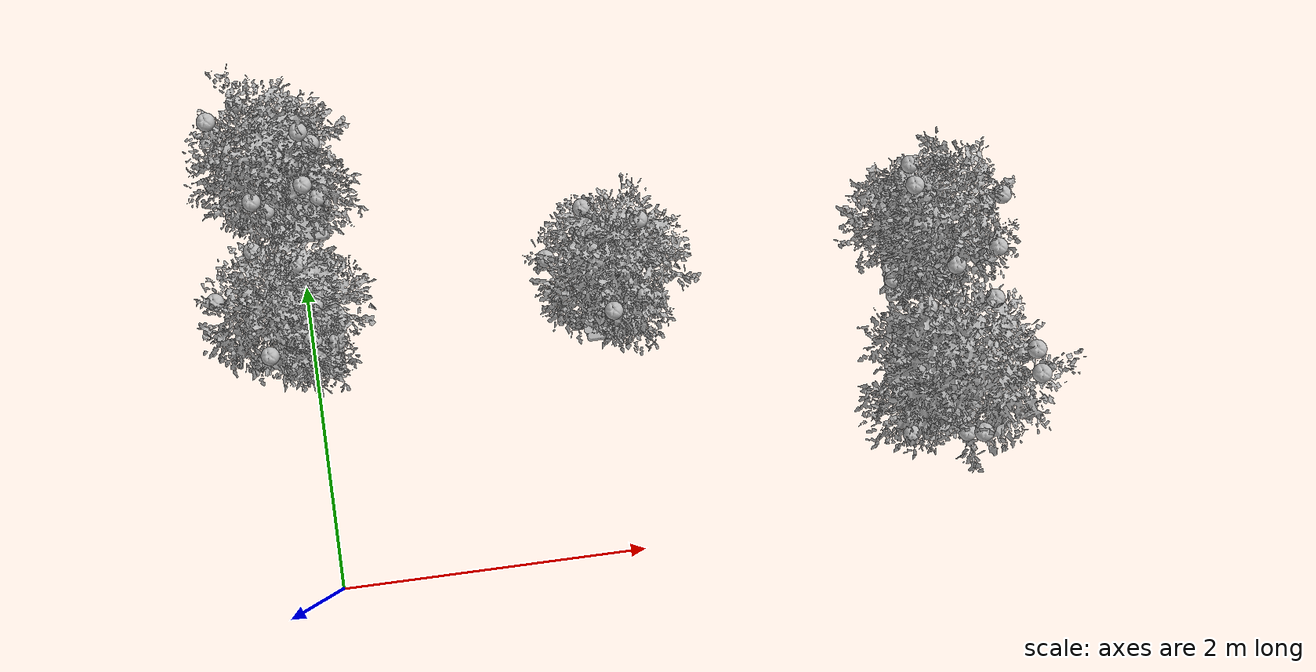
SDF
<sdf version="1.6">
 <world name="default">
  <model name="plant02">
   <static>1</static>
   <link name="plant_4::plant">
    <visual name="visual"><geometry><mesh><uri>model://plant/meshes/plant.obj</uri></mesh></geometry></visual>
    <collision name="collision"><geometry><box><size>0.1 0.1 0.1</size></box></geometry></collision>
    <pose>0 0 -0.45 0 0 -0.277507</pose>
   </link>
   <link name="trough::trough_link">
    <visual name="visual"><geometry><mesh><uri>model://trough/meshes/truf.obj</uri></mesh></geometry></visual>
    <collision name="collision">
     <geometry><mesh><uri>model://trough/meshes/truf.obj</uri></mesh></geometry>
    </collision>
    <pose>0 0 0 1.57 -0 0</pose>
   </link>
   <link name="tomato_40::tomato_link">
    <visual name="visual"><geometry><mesh><uri>model://tomato/meshes/tomato.obj</uri></mesh></geometry></visual>
    <collision name="collision">
     <geometry><mesh><uri>model://tomato/meshes/tomato.obj</uri></mesh></geometry>
    </collision>
    <pose>-0.297 0.244 0.669 0 -0 0</pose>
   </link>
   <link name="tomato_41::tomato_link">
    <visual name="visual"><geometry><mesh><uri>model://tomato/meshes/tomato.obj</uri></mesh></geometry></visual>
    <collision name="collision">
     <geometry><mesh><uri>model://tomato/meshes/tomato.obj</uri></mesh></geometry>
    </collision>
    <pose>0.073 0.375 1.175 0 -0 0</pose>
   </link>
   <link name="tomato_42::tomato_link">
    <visual name="visual"><geometry><mesh><uri>model://tomato/meshes/tomato.obj</uri></mesh></geometry></visual>
    <collision name="collision">
     <geometry><mesh><uri>model://tomato/meshes/tomato.obj</uri></mesh></geometry>
    </collision>
    <pose>0.196 -0.202 1.528 0 -0 0</pose>
   </link>
   <link name="tomato_43::tomato_link">
    <visual name="visual"><geometry><mesh><uri>model://tomato/meshes/tomato.obj</uri></mesh></geometry></visual>
    <collision name="collision">
     <geometry><mesh><uri>model://tomato/meshes/tomato.obj</uri></mesh></geometry>
    </collision>
    <pose>0.054 -0.237 0.732 0 -0 0</pose>
   </link>
   <link name="tomato_44::tomato_link">
    <visual name="visual"><geometry><mesh><uri>model://tomato/meshes/tomato.obj</uri></mesh></geometry></visual>
    <collision name="collision">
     <geometry><mesh><uri>model://tomato/meshes/tomato.obj</uri></mesh></geometry>
    </collision>
    <pose>-0.236 -0.275 0.851 0 -0 0</pose>
   </link>
   <link name="tomato_45::tomato_link">
    <visual name="visual"><geometry><mesh><uri>model://tomato/meshes/tomato.obj</uri></mesh></geometry></visual>
    <collision name="collision">
     <geometry><mesh><uri>model://tomato/meshes/tomato.obj</uri></mesh></geometry>
    </collision>
    <pose>-0.318 0.01 1.158 0 -0 0</pose>
   </link>
   <link name="tomato_46::tomato_link">
    <visual name="visual"><geometry><mesh><uri>model://tomato/meshes/tomato.obj</uri></mesh></geometry></visual>
    <collision name="collision">
     <geometry><mesh><uri>model://tomato/meshes/tomato.obj</uri></mesh></geometry>
    </collision>
    <pose>0.351 0.12 1.158 0 -0 0</pose>
   </link>
   <link name="tomato_47::tomato_link">
    <visual name="visual"><geometry><mesh><uri>model://tomato/meshes/tomato.obj</uri></mesh></geometry></visual>
    <collision name="collision">
     <geometry><mesh><uri>model://tomato/meshes/tomato.obj</uri></mesh></geometry>
    </collision>
    <pose>-0.039 -0.257 1.451 0 -0 0</pose>
   </link>
   <link name="tomato_48::tomato_link">
    <visual name="visual"><geometry><mesh><uri>model://tomato/meshes/tomato.obj</uri></mesh></geometry></visual>
    <collision name="collision">
     <geometry><mesh><uri>model://tomato/meshes/tomato.obj</uri></mesh></geometry>
    </collision>
    <pose>-0.236 -0.189 1.233 0 -0 0</pose>
   </link>
   <link name="tomato_49::tomato_link">
    <visual name="visual"><geometry><mesh><uri>model://tomato/meshes/tomato.obj</uri></mesh></geometry></visual>
    <collision name="collision">
     <geometry><mesh><uri>model://tomato/meshes/tomato.obj</uri></mesh></geometry>
    </collision>
    <pose>-0.318 0.01 1.599 0 -0 0</pose>
   </link>
   <pose>0 1.8 0 0 -0 1.57</pose>
  </model>
  <model name="plant03">
   <static>1</static>
   <link name="plant_2::plant">
    <visual name="visual"><geometry><mesh><uri>model://plant/meshes/plant.obj</uri></mesh></geometry></visual>
    <collision name="collision"><geometry><box><size>0.1 0.1 0.1</size></box></geometry></collision>
    <pose>0 0 -0.45 0 -0 0.338594</pose>
   </link>
   <link name="trough::trough_link">
    <visual name="visual"><geometry><mesh><uri>model://trough/meshes/truf.obj</uri></mesh></geometry></visual>
    <collision name="collision">
     <geometry><mesh><uri>model://trough/meshes/truf.obj</uri></mesh></geometry>
    </collision>
    <pose>0 0 0 1.57 -0 0</pose>
   </link>
   <link name="tomato_20::tomato_link">
    <visual name="visual"><geometry><mesh><uri>model://tomato/meshes/tomato.obj</uri></mesh></geometry></visual>
    <collision name="collision">
     <geometry><mesh><uri>model://tomato/meshes/tomato.obj</uri></mesh></geometry>
    </collision>
    <pose>-0.297 0.244 0.695 0 -0 0</pose>
   </link>
   <link name="tomato_21::tomato_link">
    <visual name="visual"><geometry><mesh><uri>model://tomato/meshes/tomato.obj</uri></mesh></geometry></visual>
    <collision name="collision">
     <geometry><mesh><uri>model://tomato/meshes/tomato.obj</uri></mesh></geometry>
    </collision>
    <pose>0.164 0.199 1.684 0 -0 0</pose>
   </link>
   <link name="tomato_22::tomato_link">
    <visual name="visual"><geometry><mesh><uri>model://tomato/meshes/tomato.obj</uri></mesh></geometry></visual>
    <collision name="collision">
     <geometry><mesh><uri>model://tomato/meshes/tomato.obj</uri></mesh></geometry>
    </collision>
    <pose>0.394 -0.151 0.705 0 -0 0</pose>
   </link>
   <link name="tomato_23::tomato_link">
    <visual name="visual"><geometry><mesh><uri>model://tomato/meshes/tomato.obj</uri></mesh></geometry></visual>
    <collision name="collision">
     <geometry><mesh><uri>model://tomato/meshes/tomato.obj</uri></mesh></geometry>
    </collision>
    <pose>0.054 -0.308 1.158 0 -0 0</pose>
   </link>
   <link name="tomato_24::tomato_link">
    <visual name="visual"><geometry><mesh><uri>model://tomato/meshes/tomato.obj</uri></mesh></geometry></visual>
    <collision name="collision">
     <geometry><mesh><uri>model://tomato/meshes/tomato.obj</uri></mesh></geometry>
    </collision>
    <pose>-0.236 -0.275 0.883 0 -0 0</pose>
   </link>
   <link name="tomato_25::tomato_link">
    <visual name="visual"><geometry><mesh><uri>model://tomato/meshes/tomato.obj</uri></mesh></geometry></visual>
    <collision name="collision">
     <geometry><mesh><uri>model://tomato/meshes/tomato.obj</uri></mesh></geometry>
    </collision>
    <pose>-0.318 0.01 1.158 0 -0 0</pose>
   </link>
   <link name="tomato_26::tomato_link">
    <visual name="visual"><geometry><mesh><uri>model://tomato/meshes/tomato.obj</uri></mesh></geometry></visual>
    <collision name="collision">
     <geometry><mesh><uri>model://tomato/meshes/tomato.obj</uri></mesh></geometry>
    </collision>
    <pose>0.351 0.12 1.158 0 -0 0</pose>
   </link>
   <link name="tomato_27::tomato_link">
    <visual name="visual"><geometry><mesh><uri>model://tomato/meshes/tomato.obj</uri></mesh></geometry></visual>
    <collision name="collision">
     <geometry><mesh><uri>model://tomato/meshes/tomato.obj</uri></mesh></geometry>
    </collision>
    <pose>0.054 -0.308 1.599 0 -0 0</pose>
   </link>
   <link name="tomato_28::tomato_link">
    <visual name="visual"><geometry><mesh><uri>model://tomato/meshes/tomato.obj</uri></mesh></geometry></visual>
    <collision name="collision">
     <geometry><mesh><uri>model://tomato/meshes/tomato.obj</uri></mesh></geometry>
    </collision>
    <pose>-0.236 -0.275 1.464 0 -0 0</pose>
   </link>
   <link name="tomato_29::tomato_link">
    <visual name="visual"><geometry><mesh><uri>model://tomato/meshes/tomato.obj</uri></mesh></geometry></visual>
    <collision name="collision">
     <geometry><mesh><uri>model://tomato/meshes/tomato.obj</uri></mesh></geometry>
    </collision>
    <pose>-0.318 0.01 1.599 0 -0 0</pose>
   </link>
   <pose>0 2.7 -0 0 -0 1.57</pose>
  </model>
  <model name="plant12">
   <static>1</static>
   <link name="plant_4::plant">
    <visual name="visual"><geometry><mesh><uri>model://plant/meshes/plant.obj</uri></mesh></geometry></visual>
    <collision name="collision"><geometry><box><size>0.1 0.1 0.1</size></box></geometry></collision>
    <pose>0 0 -0.45 0 0 -0.277507</pose>
   </link>
   <link name="trough::trough_link">
    <visual name="visual"><geometry><mesh><uri>model://trough/meshes/truf.obj</uri></mesh></geometry></visual>
    <collision name="collision">
     <geometry><mesh><uri>model://trough/meshes/truf.obj</uri></mesh></geometry>
    </collision>
    <pose>0 0 0 1.57 -0 0</pose>
   </link>
   <link name="tomato_40::tomato_link">
    <visual name="visual"><geometry><mesh><uri>model://tomato/meshes/tomato.obj</uri></mesh></geometry></visual>
    <collision name="collision">
     <geometry><mesh><uri>model://tomato/meshes/tomato.obj</uri></mesh></geometry>
    </collision>
    <pose>-0.297 0.244 0.669 0 -0 0</pose>
   </link>
   <link name="tomato_41::tomato_link">
    <visual name="visual"><geometry><mesh><uri>model://tomato/meshes/tomato.obj</uri></mesh></geometry></visual>
    <collision name="collision">
     <geometry><mesh><uri>model://tomato/meshes/tomato.obj</uri></mesh></geometry>
    </collision>
    <pose>0.073 0.375 1.175 0 -0 0</pose>
   </link>
   <link name="tomato_42::tomato_link">
    <visual name="visual"><geometry><mesh><uri>model://tomato/meshes/tomato.obj</uri></mesh></geometry></visual>
    <collision name="collision">
     <geometry><mesh><uri>model://tomato/meshes/tomato.obj</uri></mesh></geometry>
    </collision>
    <pose>0.196 -0.202 1.528 0 -0 0</pose>
   </link>
   <link name="tomato_43::tomato_link">
    <visual name="visual"><geometry><mesh><uri>model://tomato/meshes/tomato.obj</uri></mesh></geometry></visual>
    <collision name="collision">
     <geometry><mesh><uri>model://tomato/meshes/tomato.obj</uri></mesh></geometry>
    </collision>
    <pose>0.054 -0.237 0.732 0 -0 0</pose>
   </link>
   <link name="tomato_44::tomato_link">
    <visual name="visual"><geometry><mesh><uri>model://tomato/meshes/tomato.obj</uri></mesh></geometry></visual>
    <collision name="collision">
     <geometry><mesh><uri>model://tomato/meshes/tomato.obj</uri></mesh></geometry>
    </collision>
    <pose>-0.236 -0.275 0.851 0 -0 0</pose>
   </link>
   <link name="tomato_45::tomato_link">
    <visual name="visual"><geometry><mesh><uri>model://tomato/meshes/tomato.obj</uri></mesh></geometry></visual>
    <collision name="collision">
     <geometry><mesh><uri>model://tomato/meshes/tomato.obj</uri></mesh></geometry>
    </collision>
    <pose>-0.318 0.01 1.158 0 -0 0</pose>
   </link>
   <link name="tomato_46::tomato_link">
    <visual name="visual"><geometry><mesh><uri>model://tomato/meshes/tomato.obj</uri></mesh></geometry></visual>
    <collision name="collision">
     <geometry><mesh><uri>model://tomato/meshes/tomato.obj</uri></mesh></geometry>
    </collision>
    <pose>0.351 0.12 1.158 0 -0 0</pose>
   </link>
   <link name="tomato_47::tomato_link">
    <visual name="visual"><geometry><mesh><uri>model://tomato/meshes/tomato.obj</uri></mesh></geometry></visual>
    <collision name="collision">
     <geometry><mesh><uri>model://tomato/meshes/tomato.obj</uri></mesh></geometry>
    </collision>
    <pose>-0.039 -0.257 1.451 0 -0 0</pose>
   </link>
   <link name="tomato_48::tomato_link">
    <visual name="visual"><geometry><mesh><uri>model://tomato/meshes/tomato.obj</uri></mesh></geometry></visual>
    <collision name="collision">
     <geometry><mesh><uri>model://tomato/meshes/tomato.obj</uri></mesh></geometry>
    </collision>
    <pose>-0.236 -0.189 1.233 0 -0 0</pose>
   </link>
   <link name="tomato_49::tomato_link">
    <visual name="visual"><geometry><mesh><uri>model://tomato/meshes/tomato.obj</uri></mesh></geometry></visual>
    <collision name="collision">
     <geometry><mesh><uri>model://tomato/meshes/tomato.obj</uri></mesh></geometry>
    </collision>
    <pose>-0.318 0.01 1.599 0 -0 0</pose>
   </link>
   <pose>2 1.8 0 0 -0 1.57</pose>
  </model>
  <model name="plant21">
   <static>1</static>
   <link name="plant_3_link">
    <visual name="visual">
     <pose>0 0 -0.45 0 0 -1.57</pose>
     <geometry>
      <mesh><uri>model://plant/meshes/plant.obj</uri><scale>1.13768 1.13768 1.13768</scale></mesh>
     </geometry>
    </visual>
   </link>
   <link name="trough::trough_link">
    <visual name="visual"><geometry><mesh><uri>model://trough/meshes/truf.obj</uri></mesh></geometry></visual>
    <collision name="collision">
     <geometry><mesh><uri>model://trough/meshes/truf.obj</uri></mesh></geometry>
    </collision>
    <pose>0 0 0 1.57 -0 0</pose>
   </link>
   <link name="tomato_30::tomato_link">
    <visual name="visual"><geometry><mesh><uri>model://tomato/meshes/tomato.obj</uri></mesh></geometry></visual>
    <collision name="collision">
     <geometry><mesh><uri>model://tomato/meshes/tomato.obj</uri></mesh></geometry>
    </collision>
    <pose>-0.364 0.298 0.921 0 -0 0</pose>
   </link>
   <link name="tomato_31::tomato_link">
    <visual name="visual"><geometry><mesh><uri>model://tomato/meshes/tomato.obj</uri></mesh></geometry></visual>
    <collision name="collision">
     <geometry><mesh><uri>model://tomato/meshes/tomato.obj</uri></mesh></geometry>
    </collision>
    <pose>0.161 0.29 0.769 0 -0 0</pose>
   </link>
   <link name="tomato_32::tomato_link">
    <visual name="visual"><geometry><mesh><uri>model://tomato/meshes/tomato.obj</uri></mesh></geometry></visual>
    <collision name="collision">
     <geometry><mesh><uri>model://tomato/meshes/tomato.obj</uri></mesh></geometry>
    </collision>
    <pose>0.355 -0.152 1.751 0 -0 0</pose>
   </link>
   <link name="tomato_33::tomato_link">
    <visual name="visual"><geometry><mesh><uri>model://tomato/meshes/tomato.obj</uri></mesh></geometry></visual>
    <collision name="collision">
     <geometry><mesh><uri>model://tomato/meshes/tomato.obj</uri></mesh></geometry>
    </collision>
    <pose>0.036 -0.33 1.477 0 -0 0</pose>
   </link>
   <link name="tomato_34::tomato_link">
    <visual name="visual"><geometry><mesh><uri>model://tomato/meshes/tomato.obj</uri></mesh></geometry></visual>
    <collision name="collision">
     <geometry><mesh><uri>model://tomato/meshes/tomato.obj</uri></mesh></geometry>
    </collision>
    <pose>-0.294 -0.293 0.701 0 -0 0</pose>
   </link>
   <link name="tomato_35::tomato_link">
    <visual name="visual"><geometry><mesh><uri>model://tomato/meshes/tomato.obj</uri></mesh></geometry></visual>
    <collision name="collision">
     <geometry><mesh><uri>model://tomato/meshes/tomato.obj</uri></mesh></geometry>
    </collision>
    <pose>-0.388 0.032 1.317 0 -0 0</pose>
   </link>
   <link name="tomato_36::tomato_link">
    <visual name="visual"><geometry><mesh><uri>model://tomato/meshes/tomato.obj</uri></mesh></geometry></visual>
    <collision name="collision">
     <geometry><mesh><uri>model://tomato/meshes/tomato.obj</uri></mesh></geometry>
    </collision>
    <pose>0.374 0.157 1.317 0 -0 0</pose>
   </link>
   <link name="tomato_37::tomato_link">
    <visual name="visual"><geometry><mesh><uri>model://tomato/meshes/tomato.obj</uri></mesh></geometry></visual>
    <collision name="collision">
     <geometry><mesh><uri>model://tomato/meshes/tomato.obj</uri></mesh></geometry>
    </collision>
    <pose>0.036 -0.33 1.82 0 -0 0</pose>
   </link>
   <link name="tomato_38::tomato_link">
    <visual name="visual"><geometry><mesh><uri>model://tomato/meshes/tomato.obj</uri></mesh></geometry></visual>
    <collision name="collision">
     <geometry><mesh><uri>model://tomato/meshes/tomato.obj</uri></mesh></geometry>
    </collision>
    <pose>-0.102 -0.293 2.016 0 -0 0</pose>
   </link>
   <link name="tomato_39::tomato_link">
    <visual name="visual"><geometry><mesh><uri>model://tomato/meshes/tomato.obj</uri></mesh></geometry></visual>
    <collision name="collision">
     <geometry><mesh><uri>model://tomato/meshes/tomato.obj</uri></mesh></geometry>
    </collision>
    <pose>-0.388 0.032 1.82 0 -0 0</pose>
   </link>
   <pose>4 0.9 0 0 -0 1.57</pose>
  </model>
  <model name="plant22">
   <static>1</static>
   <link name="plant_2::plant">
    <visual name="visual"><geometry><mesh><uri>model://plant/meshes/plant.obj</uri></mesh></geometry></visual>
    <collision name="collision"><geometry><box><size>0.1 0.1 0.1</size></box></geometry></collision>
    <pose>0 0 -0.45 0 -0 0.338594</pose>
   </link>
   <link name="trough::trough_link">
    <visual name="visual"><geometry><mesh><uri>model://trough/meshes/truf.obj</uri></mesh></geometry></visual>
    <collision name="collision">
     <geometry><mesh><uri>model://trough/meshes/truf.obj</uri></mesh></geometry>
    </collision>
    <pose>0 0 0 1.57 -0 0</pose>
   </link>
   <link name="tomato_20::tomato_link">
    <visual name="visual"><geometry><mesh><uri>model://tomato/meshes/tomato.obj</uri></mesh></geometry></visual>
    <collision name="collision">
     <geometry><mesh><uri>model://tomato/meshes/tomato.obj</uri></mesh></geometry>
    </collision>
    <pose>-0.297 0.244 0.695 0 -0 0</pose>
   </link>
   <link name="tomato_21::tomato_link">
    <visual name="visual"><geometry><mesh><uri>model://tomato/meshes/tomato.obj</uri></mesh></geometry></visual>
    <collision name="collision">
     <geometry><mesh><uri>model://tomato/meshes/tomato.obj</uri></mesh></geometry>
    </collision>
    <pose>0.164 0.199 1.684 0 -0 0</pose>
   </link>
   <link name="tomato_22::tomato_link">
    <visual name="visual"><geometry><mesh><uri>model://tomato/meshes/tomato.obj</uri></mesh></geometry></visual>
    <collision name="collision">
     <geometry><mesh><uri>model://tomato/meshes/tomato.obj</uri></mesh></geometry>
    </collision>
    <pose>0.394 -0.151 0.705 0 -0 0</pose>
   </link>
   <link name="tomato_23::tomato_link">
    <visual name="visual"><geometry><mesh><uri>model://tomato/meshes/tomato.obj</uri></mesh></geometry></visual>
    <collision name="collision">
     <geometry><mesh><uri>model://tomato/meshes/tomato.obj</uri></mesh></geometry>
    </collision>
    <pose>0.054 -0.308 1.158 0 -0 0</pose>
   </link>
   <link name="tomato_24::tomato_link">
    <visual name="visual"><geometry><mesh><uri>model://tomato/meshes/tomato.obj</uri></mesh></geometry></visual>
    <collision name="collision">
     <geometry><mesh><uri>model://tomato/meshes/tomato.obj</uri></mesh></geometry>
    </collision>
    <pose>-0.236 -0.275 0.883 0 -0 0</pose>
   </link>
   <link name="tomato_25::tomato_link">
    <visual name="visual"><geometry><mesh><uri>model://tomato/meshes/tomato.obj</uri></mesh></geometry></visual>
    <collision name="collision">
     <geometry><mesh><uri>model://tomato/meshes/tomato.obj</uri></mesh></geometry>
    </collision>
    <pose>-0.318 0.01 1.158 0 -0 0</pose>
   </link>
   <link name="tomato_26::tomato_link">
    <visual name="visual"><geometry><mesh><uri>model://tomato/meshes/tomato.obj</uri></mesh></geometry></visual>
    <collision name="collision">
     <geometry><mesh><uri>model://tomato/meshes/tomato.obj</uri></mesh></geometry>
    </collision>
    <pose>0.351 0.12 1.158 0 -0 0</pose>
   </link>
   <link name="tomato_27::tomato_link">
    <visual name="visual"><geometry><mesh><uri>model://tomato/meshes/tomato.obj</uri></mesh></geometry></visual>
    <collision name="collision">
     <geometry><mesh><uri>model://tomato/meshes/tomato.obj</uri></mesh></geometry>
    </collision>
    <pose>0.054 -0.308 1.599 0 -0 0</pose>
   </link>
   <link name="tomato_28::tomato_link">
    <visual name="visual"><geometry><mesh><uri>model://tomato/meshes/tomato.obj</uri></mesh></geometry></visual>
    <collision name="collision">
     <geometry><mesh><uri>model://tomato/meshes/tomato.obj</uri></mesh></geometry>
    </collision>
    <pose>-0.236 -0.275 1.464 0 -0 0</pose>
   </link>
   <link name="tomato_29::tomato_link">
    <visual name="visual"><geometry><mesh><uri>model://tomato/meshes/tomato.obj</uri></mesh></geometry></visual>
    <collision name="collision">
     <geometry><mesh><uri>model://tomato/meshes/tomato.obj</uri></mesh></geometry>
    </collision>
    <pose>-0.318 0.01 1.599 0 -0 0</pose>
   </link>
   <pose>4 1.8 -0 0 -0 1.57</pose>
  </model>
 </world>
</sdf>
